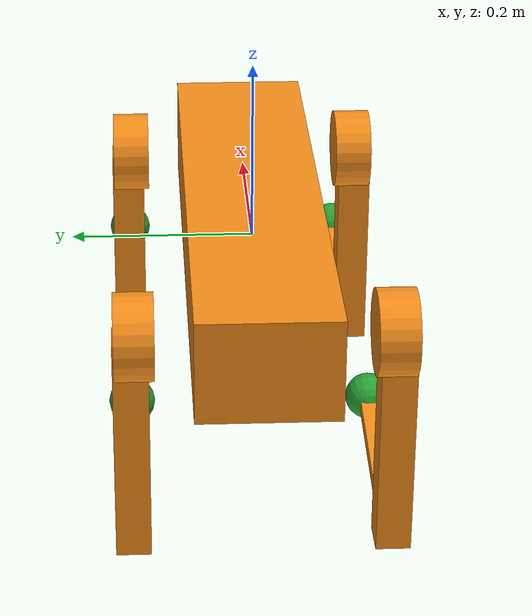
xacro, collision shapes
<?xml version="1.0"?>

<robot name="aliengo" xmlns:xacro="http://www.ros.org/wiki/xacro">

     <!-- This argument allows us to load joint sensors that measure the internal wrenches -->
    <xacro:arg name="load_force_sensors" default="false"/>
    <xacro:arg name="sensors" default="false"/>
    <xacro:arg name="task_period" default="0.004"/>
    <xacro:arg name="arm_enabled" default="false"/>
    <xacro:arg name="arm_name" default="kinova"/>
    <xacro:arg name="robot_name"  default="aliengo"/>
    <xacro:arg name="base_name"   default="trunk"/>

    <!-- load generic materials -->
    <xacro:include filename="$(find aliengo_description)/urdfs/materials.xacro"/>

    <!-- generic simulator_gazebo plugins for starting mechanism control, ros time -->
    <xacro:include filename="$(find aliengo_description)/urdfs/gazebo.urdf.xacro"/>

    <!-- legs transmission and gazebo plugins -->
    <xacro:include filename="$(find aliengo_description)/urdfs/leg.transmission.xacro"/>
    <xacro:include filename="$(find aliengo_description)/urdfs/leg.gazebo.xacro"/>

    <!-- sensors -->
    <xacro:if value="$(arg sensors)">
        <xacro:include filename="$(find sensors_description)/urdfs/sensors/imu.gazebo.xacro"/>
    </xacro:if>

    <xacro:include filename="$(find aliengo_description)/urdfs/const.xacro"/>
    <xacro:include filename="$(find aliengo_description)/urdfs/leg.xacro"/>

    <!-- Rollover Protection mode will add an additional stick on the top, use "true" or "false" to switch it. -->
    <xacro:property name="rolloverProtection" value="false"/>

    <link name="base_link" />

   <joint name="floating_base" type="fixed">
    <origin rpy="0 0 0" xyz="0 0 0"/>
    <parent link="base_link"/>
    <child link="trunk"/>
   </joint>

    <link name="trunk">
        <visual>
            <origin rpy="0 0 0" xyz="0 0 0"/>
            <geometry>
                <mesh filename="package://aliengo_description/meshes/trunk.dae" scale="1 1 1"/>
            </geometry>
            <material name="orange"/>
        </visual>
        <collision>
            <origin rpy="0 0 0" xyz="0 0 0"/>
            <geometry>
                <box size="${trunk_length} ${trunk_width} ${trunk_height}"/>
            </geometry>
        </collision>
        <inertial>
            <origin rpy="0 0 0" xyz="${trunk_com_x} ${trunk_com_y} ${trunk_com_z}"/>
            <mass value="${trunk_mass}"/>
            <inertia
                ixx="${trunk_ixx}" ixy="${trunk_ixy}" ixz="${trunk_ixz}"
                iyy="${trunk_iyy}" iyz="${trunk_iyz}"
                izz="${trunk_izz}"/>
        </inertial>
    </link>

    <xacro:if value="${(rolloverProtection == 'true')}">
        <joint name="stick_joint" type="fixed">
            <parent link="trunk"/>
            <child link="stick_link"/>
            <origin rpy="0 0 0" xyz="${0.18} 0 ${stick_length/2.0+0.08}"/>
        </joint>

        <link name="stick_link">
            <visual>
                <geometry>
                    <cylinder length="${stick_length}" radius="${stick_radius}"/>
                </geometry>
                <origin rpy="0 0 0" xyz="0 0 0"/>
                <material name="white"/>
            </visual>
            <collision>
                <geometry>
                    <cylinder length="${stick_length}" radius="${stick_radius}"/>
                </geometry>
                <origin rpy="0 0 0" xyz="0 0 0"/>
            </collision>
            <inertial>
                <mass value="${stick_mass}"/>
                <inertia
                    ixx="${stick_mass / 2.0 * (stick_radius*stick_radius)}" ixy="0.0" ixz="0.0"
                    iyy="${stick_mass / 12.0 * (3*stick_radius*stick_radius + stick_length*stick_length)}" iyz="0.0"
                    izz="${stick_mass / 12.0 * (3*stick_radius*stick_radius + stick_length*stick_length)}"/>
            </inertial>
        </link>
    </xacro:if>

    <joint name="imu_joint" type="fixed">
        <parent link="trunk"/>
        <child link="trunk_imu"/>
        <origin rpy="0 0 0" xyz="0 0 0"/>
    </joint>

    <link name="trunk_imu">
        <inertial>
            <mass value="0.001"/>
            <origin rpy="0 0 0" xyz="0 0 0"/>
            <inertia ixx="0.0001" ixy="0" ixz="0" iyy="0.000001" iyz="0" izz="0.0001"/>
        </inertial>
        <visual>
            <origin rpy="0 0 0" xyz="0 0 0"/>
            <geometry>
                <box size="0.001 0.001 0.001"/>
            </geometry>
            <material name="red"/>
        </visual>
        <collision>
            <origin rpy="0 0 0" xyz="0 0 0"/>
            <geometry>
                <box size=".001 .001 .001"/>
            </geometry>
        </collision>
    </link>

    <xacro:leg name="rf" mirror="-1" mirror_dae= "False" front_hind="1" front_hind_dae="True">
        <origin rpy="0 0 0" xyz="${leg_offset_x} ${-leg_offset_y} 0"/>
    </xacro:leg>

    <xacro:leg name="lf" mirror="1" mirror_dae="True" front_hind="1" front_hind_dae="True">
        <origin rpy="0 0 0" xyz="${leg_offset_x} ${leg_offset_y} 0"/>
    </xacro:leg>

    <xacro:leg name="rh" mirror="-1" mirror_dae="False" front_hind="-1" front_hind_dae="False">
        <origin rpy="0 0 0" xyz="${-leg_offset_x} ${-leg_offset_y} 0"/>
    </xacro:leg>

    <xacro:leg name="lh" mirror="1" mirror_dae="True" front_hind="-1" front_hind_dae="False">
        <origin rpy="0 0 0" xyz="${-leg_offset_x} ${leg_offset_y} 0"/>
    </xacro:leg>

    <!-- Extensions -->
    <xacro:leg_transmission prefix="rf"/>
    <xacro:leg_gazebo prefix="rf" robot_name="$(arg robot_name)" load_force_sensors="$(arg load_force_sensors)"/>
    <xacro:leg_transmission prefix="lf"/>
    <xacro:leg_gazebo prefix="lf" robot_name="$(arg robot_name)" load_force_sensors="$(arg load_force_sensors)"/>
    <xacro:leg_transmission prefix="rh"/>
    <xacro:leg_gazebo prefix="rh" robot_name="$(arg robot_name)" load_force_sensors="$(arg load_force_sensors)"/>
    <xacro:leg_transmission prefix="lh"/>
    <xacro:leg_gazebo prefix="lh" robot_name="$(arg robot_name)" load_force_sensors="$(arg load_force_sensors)"/>

    <xacro:if value="$(arg arm_enabled)">
           <xacro:include filename="$(find aliengo_description)/urdfs/arm/$(arg arm_name)_adapter.urdf.xacro" />
    </xacro:if>

    <!-- Standard accessories. -->
    <xacro:if value="$(arg sensors)">
	    <!-- IMU -->
	    <gazebo reference="trunk_imu">
		<gravity>true</gravity>
		<sensor name="imu_sensor" type="imu">
		    <always_on>true</always_on>
		    <update_rate>${1/ $(arg task_period)}</update_rate>
		    <visualize>true</visualize>

		    <imu>
		    <linear_acceleration>
		        <x>
		            <noise type="gaussian">
		                <mean>0.0</mean>
		                <stddev>0.00001</stddev>
		                <bias_mean>0.0</bias_mean>
		                <bias_stddev>0</bias_stddev>
		            </noise>
		        </x>
			<y>
		            <noise type="gaussian">
		                <mean>0.0</mean>
		                <stddev>0.00001</stddev>
		                <bias_mean>0.0</bias_mean>
		                <bias_stddev>0</bias_stddev>
		            </noise>
		        </y>
			<z>
		            <noise type="gaussian">
		                <mean>0.0</mean>
		                <stddev>0.00001</stddev>
		                <bias_mean>0.0</bias_mean>
		                <bias_stddev>0.0</bias_stddev>
		            </noise>
		        </z>
		    </linear_acceleration>
		    </imu>

		    <topic>__default_topic__</topic>
		    <plugin filename="libgazebo_ros_imu_sensor.so" name="imu_plugin">
		        <topicName>$(arg robot_name)/trunk_imu</topicName>
		        <bodyName>trunk_imu</bodyName>
		        <updateRateHZ>500</updateRateHZ>
		        <gaussianNoise>0.00001</gaussianNoise>    <!-- STD dev sqrt of covariance -->
		        <xyzOffset>0 0 0</xyzOffset>
		        <rpyOffset>0 0 0</rpyOffset>
		        <frameName>trunk_imu</frameName>
		    </plugin>
		    <pose>0 0 0 0 0 0</pose>
		</sensor>
	    </gazebo>
    </xacro:if>

    <!-- Body contacts damped like the feet: undamped, the body chatters on the ground while the
         robot lies and the accelerometer calibration never settles. -->
    <gazebo reference="trunk">
        <kp>1000000.0</kp>
        <kd>${contact_kd}</kd>
    </gazebo>

</robot>

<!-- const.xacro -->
<robot name="aliengo_description" xmlns:xacro="http://www.ros.org/wiki/xacro">

    <!-- Constants for robot dimensions -->
    <xacro:property name="PI" value="3.1415926535897931"/>
    <xacro:property name="stick_mass" value="0.00001"/>

    <!-- simplified collision value -->
    <xacro:property name="trunk_width" value="0.150"/>
    <xacro:property name="trunk_length" value="0.647"/>
    <xacro:property name="trunk_height" value="0.112"/>
    <xacro:property name="hip_radius" value="0.046"/>
    <xacro:property name="hip_length" value="0.0418"/>
    <xacro:property name="upperleg_shoulder_radius" value="0.044"/>
    <xacro:property name="upperleg_shoulder_length" value="0.08"/>
    <xacro:property name="upperleg_width" value="0.0374"/>
    <xacro:property name="upperleg_height" value="0.043"/>
    <xacro:property name="lowerleg_width" value="0.0208"/>
    <xacro:property name="lowerleg_height" value="0.016"/>
    <xacro:property name="foot_radius" value="0.0265"/>
    <xacro:property name="stick_radius" value="0.01"/>
    <xacro:property name="stick_length" value="0.2"/>

    <!-- kinematic value -->
    <!-- hfe joint origin, y. 0.0868 in Unitree's own aliengo.urdf; this file had 0.083. -->
    <xacro:property name="upperleg_offset" value="0.0868"/>
    <xacro:property name="upperleg_length" value="0.25"/>
    <xacro:property name="lowerleg_length" value="0.25"/>

    <!-- leg offset from trunk center value -->
    <!-- haa joint origin, x. 0.2407 in Unitree's own aliengo.urdf; this file had 0.2399. -->
    <xacro:property name="leg_offset_x" value="0.2407"/>
    <xacro:property name="leg_offset_y" value="0.051"/>
    <xacro:property name="trunk_offset_z" value="0.01675"/>
    <!-- Only places the simplified hip collision cylinder, not a joint, so it is left as it was:
         the 3.8 mm it differs from upperleg_offset is well inside the cylinder's 46 mm radius. -->
    <xacro:property name="hip_offset" value="0.083"/>

    <!-- joint limits -->
    <xacro:property name="joint_coulomb" value="${dict(haa=0.46, hfe=0.32, kfe=0.42)}"/>
    <xacro:property name="joint_viscous" value="${dict(haa=0.29, hfe=0.26, kfe=0.3)}"/>
    <xacro:property name="joint_armature" value="${dict(haa=0.0023, hfe=0.014, kfe=0.015)}"/>

    <!-- Contact damping, N s/m (leg.gazebo.xacro and the body): at 100 the feet bounce on touchdown. -->
    <xacro:property name="contact_kd" value="3000.0"/>

    <xacro:property name="HAA_position_max" value="${70*PI/180.0}"/>
    <xacro:property name="HAA_position_min" value="${-70*PI/180.0}"/>
    <xacro:property name="HAA_velocity_max" value="20"/>
    <xacro:property name="HAA_effort_max" value="35.278"/>

    <xacro:property name="HFE_position_max" value="${PI}"/>
    <xacro:property name="HFE_position_min" value="${-PI}"/>
    <xacro:property name="HFE_velocity_max" value="20"/>
    <xacro:property name="HFE_effort_max" value="35.278"/>

    <xacro:property name="KFE_position_max" value="${-37*PI/180.0}"/>
    <xacro:property name="KFE_position_min" value="${-159*PI/180.0}"/>
    <xacro:property name="KFE_velocity_max" value="15.89"/>
    <xacro:property name="KFE_effort_max" value="44.4"/>

    <!-- dynamics inertial value -->
    <!-- trunk + the four hip rotors -->
    <xacro:property name="trunk_mass" value="12.228"/>
    <xacro:property name="trunk_com_x" value="0.00839019333"/>
    <xacro:property name="trunk_com_y" value="0.00365565227"/>
    <xacro:property name="trunk_com_z" value="0.000259961727"/>
    <xacro:property name="trunk_ixx" value="0.0540269213"/>
    <xacro:property name="trunk_ixy" value="0.00168480639"/>
    <xacro:property name="trunk_ixz" value="0.000234603335"/>
    <xacro:property name="trunk_iyy" value="0.25875981"/>
    <xacro:property name="trunk_iyz" value="0.000119200172"/>
    <xacro:property name="trunk_izz" value="0.284296015"/>

    <!-- hip + its thigh rotor (left front) -->
    <xacro:property name="hip_mass" value="2.139"/>
    <xacro:property name="hip_com_x" value="-0.0206763268"/>
    <xacro:property name="hip_com_y" value="0.0161443628"/>
    <xacro:property name="hip_com_z" value="-1.39761571e-05"/>
    <xacro:property name="hip_ixx" value="0.00255930704"/>
    <xacro:property name="hip_ixy" value="-0.000642292708"/>
    <xacro:property name="hip_ixz" value="1.89971884e-06"/>
    <xacro:property name="hip_iyy" value="0.00413156697"/>
    <xacro:property name="hip_iyz" value="1.25409415e-06"/>
    <xacro:property name="hip_izz" value="0.00432770595"/>

    <!-- upperleg + its calf rotor (left front) -->
    <xacro:property name="upperleg_mass" value="0.771"/>
    <xacro:property name="upperleg_com_x" value="-0.00464704669"/>
    <xacro:property name="upperleg_com_y" value="-0.0202824942"/>
    <xacro:property name="upperleg_com_z" value="-0.0399470311"/>
    <xacro:property name="upperleg_ixx" value="0.00557799484"/>
    <xacro:property name="upperleg_ixy" value="6.90628021e-05"/>
    <xacro:property name="upperleg_ixz" value="-0.000348439756"/>
    <xacro:property name="upperleg_iyy" value="0.00473442611"/>
    <xacro:property name="upperleg_iyz" value="0.000614508456"/>
    <xacro:property name="upperleg_izz" value="0.00149356151"/>

    <!-- lowerleg (left front); the foot is a separate link below -->
    <xacro:property name="lowerleg_mass" value="0.207"/>
    <xacro:property name="lowerleg_com_x" value="0.002781"/>
    <xacro:property name="lowerleg_com_y" value="6.3e-05"/>
    <xacro:property name="lowerleg_com_z" value="-0.142518"/>
    <xacro:property name="lowerleg_ixx" value="0.002129279"/>
    <xacro:property name="lowerleg_ixy" value="3.9e-08"/>
    <xacro:property name="lowerleg_ixz" value="5.757e-06"/>
    <xacro:property name="lowerleg_iyy" value="0.002141463"/>
    <xacro:property name="lowerleg_iyz" value="-5.16e-07"/>
    <xacro:property name="lowerleg_izz" value="3.7583e-05"/>

    <!-- foot -->
    <!-- leg.xacro derives the foot inertia from the sphere formula (2m/5)r^2, which comes out at
         1.6854e-05 - exactly Unitree's value, so nothing to change here. -->
    <xacro:property name="foot_mass" value="0.06"/>

</robot>

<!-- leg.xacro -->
<robot xmlns:xacro="http://www.ros.org/wiki/xacro">

    <xacro:macro name="leg" params="name mirror mirror_dae front_hind front_hind_dae *origin">

        <joint name="${name}_haa_joint" type="revolute">
            <xacro:insert_block name="origin"/>
            <parent link="trunk"/>
            <child link="${name}_hip"/>
            <axis xyz="1 0 0"/>
            <dynamics damping="${joint_viscous['haa']}" friction="${joint_coulomb['haa']}"/>
            <xacro:if value="${(mirror_dae == True)}">
                <limit effort="${HAA_effort_max}" velocity="${HAA_velocity_max}" lower="${HAA_position_min}" upper="${HAA_position_max}"/>
            </xacro:if>
            <xacro:if value="${(mirror_dae == False)}">
                <limit effort="${HAA_effort_max}" velocity="${HAA_velocity_max}" lower="${-HAA_position_max}" upper="${-HAA_position_min}"/>
            </xacro:if>
        </joint>

        <link name="${name}_hip">
            <visual>
                <xacro:if value="${(mirror_dae == True) and (front_hind_dae == True)}">
                    <origin rpy="0 0 0" xyz="0 0 0"/>
                </xacro:if>
                <xacro:if value="${(mirror_dae == False) and (front_hind_dae == True)}">
                    <origin rpy="${PI} 0 0" xyz="0 0 0"/>
                </xacro:if>
                <xacro:if value="${(mirror_dae == True) and (front_hind_dae == False)}">
                    <origin rpy="0 ${PI} 0" xyz="0 0 0"/>
                </xacro:if>
                <xacro:if value="${(mirror_dae == False) and (front_hind_dae == False)}">
                    <origin rpy="${PI} ${PI} 0" xyz="0 0 0"/>
                </xacro:if>
                <geometry>
                    <mesh filename="package://aliengo_description/meshes/hip.dae" scale="1 1 1"/>
                </geometry>
                <material name="orange"/>
            </visual>
            <collision>
                <origin rpy="${PI/2.0} 0 0" xyz="0 ${hip_offset*mirror} 0"/>
                <geometry>
                    <cylinder length="${hip_length}" radius="${hip_radius}"/>
                </geometry>
            </collision>
            <inertial>
                <origin rpy="0 0 0" xyz="${hip_com_x*front_hind} ${hip_com_y*mirror} ${hip_com_z}"/>
                <mass value="${hip_mass}"/>
                <inertia
                    ixx="${hip_ixx}" ixy="${hip_ixy*mirror*front_hind}" ixz="${hip_ixz*front_hind}"
                    iyy="${hip_iyy}" iyz="${hip_iyz*mirror}"
                    izz="${hip_izz}"/>
            </inertial>
        </link>

        <!-- this link is only for collision -->

        <joint name="${name}_hfe_joint" type="revolute">
            <origin rpy="0 0 0" xyz="0 ${upperleg_offset*mirror} 0"/>
            <parent link="${name}_hip"/>
            <child link="${name}_upperleg"/>
            <axis xyz="0 1 0"/>
            <dynamics damping="${joint_viscous['hfe']}" friction="${joint_coulomb['hfe']}"/>
            <limit effort="${HFE_effort_max}" velocity="${HFE_velocity_max}"  lower="${HFE_position_min}" upper="${HFE_position_max}"/>

        </joint>

        <link name="${name}_upperleg">
            <visual>
                <origin rpy="0 0 0" xyz="0 0 0"/>
                <geometry>
                    <xacro:if value="${mirror_dae == True}">
                        <mesh filename="package://aliengo_description/meshes/thigh.dae" scale="1 1 1"/>
                    </xacro:if>
                    <xacro:if value="${mirror_dae == False}">
                        <mesh filename="package://aliengo_description/meshes/thigh_mirror.dae" scale="1 1 1"/>
                    </xacro:if>
                </geometry>
                <material name="orange"/>
            </visual>
            <collision>
                <origin rpy="0 ${PI/2.0} 0" xyz="0 0 ${-upperleg_length/2.0}"/>
                <geometry>
                    <box size="${upperleg_length} ${upperleg_width} ${upperleg_height}"/>
                </geometry>
            </collision>
            <inertial>
                <origin rpy="0 0 0" xyz="${upperleg_com_x} ${upperleg_com_y*mirror} ${upperleg_com_z}"/>
                <mass value="${upperleg_mass}"/>
                <inertia
                    ixx="${upperleg_ixx}" ixy="${upperleg_ixy*mirror}" ixz="${upperleg_ixz}"
                    iyy="${upperleg_iyy}" iyz="${upperleg_iyz*mirror}"
                    izz="${upperleg_izz}"/>
            </inertial>
        </link>

        <joint name="${name}_kfe_joint" type="revolute">
            <origin rpy="0 0 0" xyz="0 0 ${-upperleg_length}"/>
            <parent link="${name}_upperleg"/>
            <child link="${name}_lowerleg"/>
            <axis xyz="0 1 0"/>
            <dynamics damping="${joint_viscous['kfe']}" friction="${joint_coulomb['kfe']}"/>
            <limit effort="${KFE_effort_max}" velocity="${KFE_velocity_max}" lower="${KFE_position_min}" upper="${KFE_position_max}"/>
        </joint>

        <link name="${name}_lowerleg">
            <visual>
                <origin rpy="0 0 0" xyz="0 0 0"/>
                <geometry>
                    <mesh filename="package://aliengo_description/meshes/calf.dae" scale="1 1 1"/>
                </geometry>
                <material name="orange"/>
            </visual>
            <collision>
                <origin rpy="0 ${PI/2.0} 0" xyz="0 0 ${-lowerleg_length/2.0}"/>
                <geometry>
                    <box size="${lowerleg_length} ${lowerleg_width} ${lowerleg_height}"/>
                </geometry>
            </collision>
            <inertial>
                <origin rpy="0 0 0" xyz="${lowerleg_com_x} ${lowerleg_com_y} ${lowerleg_com_z}"/>
                <mass value="${lowerleg_mass}"/>
                <inertia
                    ixx="${lowerleg_ixx}" ixy="${lowerleg_ixy}" ixz="${lowerleg_ixz}"
                    iyy="${lowerleg_iyy}" iyz="${lowerleg_iyz}"
                    izz="${lowerleg_izz}"/>
            </inertial>
        </link>

        <joint name="${name}_foot_fixed" type="fixed">
            <origin rpy="0 0 0" xyz="0 0 ${-(lowerleg_length)}"/>
            <parent link="${name}_lowerleg"/>
            <child link="${name}_foot"/>
        </joint>

        <link name="${name}_foot">
            <visual>
                <origin rpy="0 0 0" xyz="0 0 0"/>
                <geometry>
                    <sphere radius="${foot_radius-0.01}"/>
                </geometry>
                <material name="green"/>
            </visual>
            <collision>
                <origin rpy="0 0 0" xyz="0 0 0"/>
                <geometry>
                    <sphere radius="${foot_radius}"/>
                </geometry>
            </collision>
            <inertial>
                <mass value="${foot_mass}"/>
                <inertia
                    ixx="${(2*foot_mass)/5.0*(foot_radius*foot_radius)}" ixy="0.0" ixz="0.0"
                    iyy="${(2*foot_mass)/5.0*(foot_radius*foot_radius)}" iyz="0.0"
                    izz="${(2*foot_mass)/5.0*(foot_radius*foot_radius)}"/>
            </inertial>
        </link>

        <!-- Reflected rotor inertia (const.xacro), built from gazebo_plugins/joint_armature_plugin -->
        <gazebo>
            <plugin name="joint_armature_${name}" filename="libjoint_armature_plugin.so">
                <joint name="${name}_haa_joint">${joint_armature['haa']}</joint>
                <joint name="${name}_hfe_joint">${joint_armature['hfe']}</joint>
                <joint name="${name}_kfe_joint">${joint_armature['kfe']}</joint>
            </plugin>
        </gazebo>

    </xacro:macro>
</robot>
